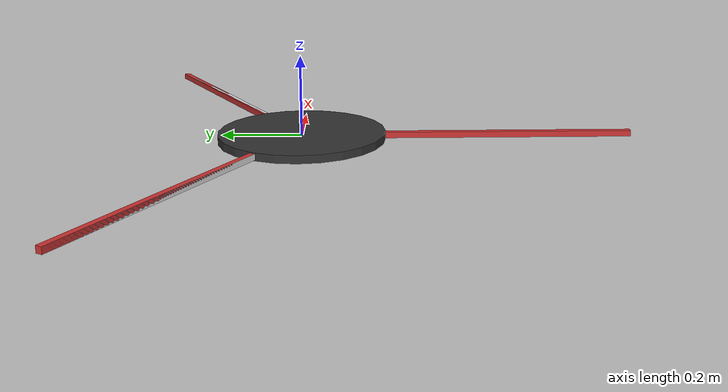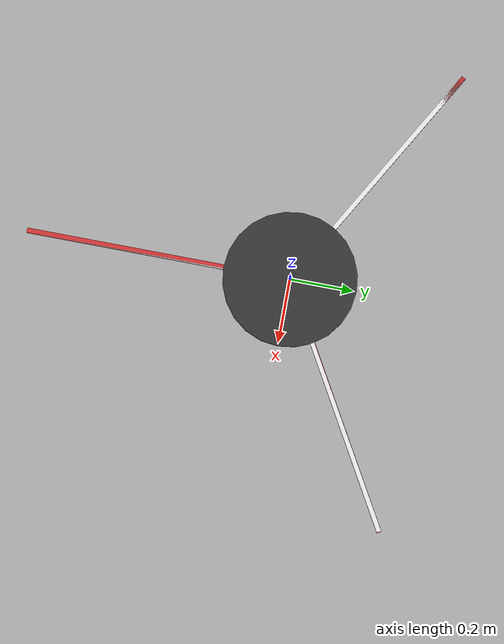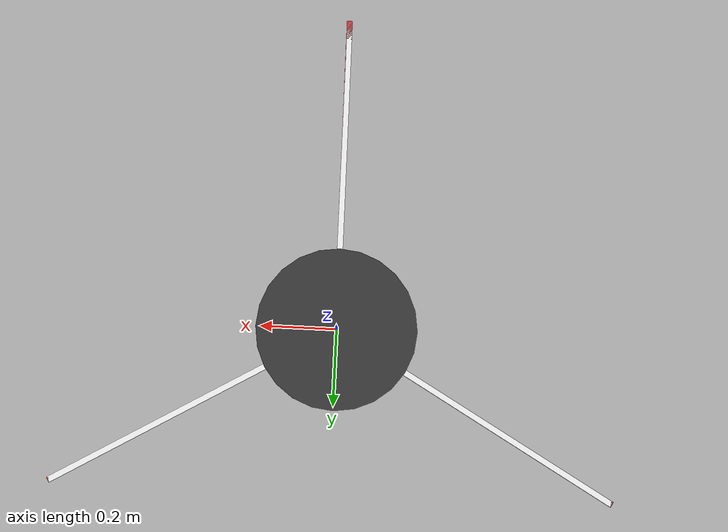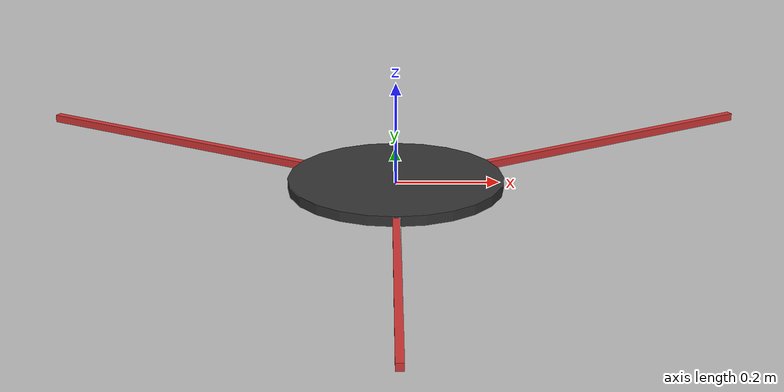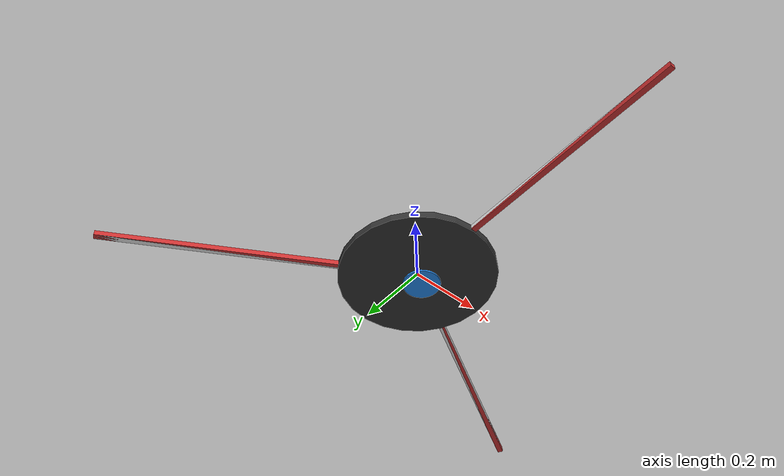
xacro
<?xml version="1.0"?>
<robot xmlns:xacro="http://www.ros.org/wiki/xacro" name="delta_robot">

  <!-- Robot Parameters -->
  <xacro:property name="base_radius" value="0.210" />
  <xacro:property name="base_height" value="0.020" />
  <xacro:property name="upper_arm_length" value="0.620" />
  <xacro:property name="lower_arm_length" value="0.880" />
  <xacro:property name="arm_thickness" value="0.015" />
  <xacro:property name="end_effector_radius" value="0.050" />
  <xacro:property name="end_effector_height" value="0.010" />
  <xacro:property name="triangle_side_length" value="0.120" />  <!-- Triangular end effector size -->
  <xacro:property name="triangle_height" value="0.010" />

  <!-- Calculated connection points for triangular end effector -->
  <xacro:property name="triangle_offset" value="0.035" />  <!-- Distance from triangle center to vertex -->

  <!-- Materials -->
  <material name="gris">
    <color rgba="0.55 0.55 0.55 1.0"/>
  </material>

  <material name="blanco">
    <color rgba="0.9 0.9 0.9 1.0"/>
  </material>

  <material name="colorte">
    <color rgba="0.15 0.55 0.95 1.0"/>
  </material>

  <material name="negro">
    <color rgba="0.2 0.2 0.2 1.0"/>
  </material>

  <material name="verde">
    <color rgba="0.2 0.8 0.2 1.0"/>
  </material>

  <material name="rojo">
    <color rgba="0.8 0.2 0.2 1.0"/>
  </material>

  <!-- BASE SUPERIOR -->
  <link name="base_link">
    <visual>
      <origin xyz="0 0 0" rpy="0 0 0"/>
      <geometry>
        <cylinder length="${base_height}" radius="${base_radius}"/>
      </geometry>
      <material name="negro"/>
    </visual>
    <collision>
      <origin xyz="0 0 0" rpy="0 0 0"/>
      <geometry>
        <cylinder length="${base_height}" radius="${base_radius}"/>
      </geometry>
    </collision>
    <inertial>
      <mass value="5.0"/>
      <origin xyz="0 0 0" rpy="0 0 0"/>
      <inertia ixx="0.2" ixy="0" ixz="0" iyy="0.2" iyz="0" izz="0.35"/>
    </inertial>
  </link>

  <!-- BRAZOS SUPERIORES (Upper Arms) -->

  <!-- BRAZO_1 (Arm 1) -->
  <link name="brazo1">
    <visual>
      <origin xyz="${upper_arm_length/2} 0 0" rpy="0 0 0"/>
      <geometry>
        <box size="${upper_arm_length} ${arm_thickness} ${arm_thickness}"/>
      </geometry>
      <material name="rojo"/>
    </visual>
    <collision>
      <origin xyz="${upper_arm_length/2} 0 0" rpy="0 0 0"/>
      <geometry>
        <box size="${upper_arm_length} ${arm_thickness} ${arm_thickness}"/>
      </geometry>
    </collision>
    <inertial>
      <mass value="0.8"/>
      <origin xyz="${upper_arm_length/2} 0 0" rpy="0 0 0"/>
      <inertia ixx="0.001" ixy="0" ixz="0" iyy="0.025" iyz="0" izz="0.025"/>
    </inertial>
  </link>

  <joint name="base_brazo1" type="revolute">
    <axis xyz="0 1 0"/>
    <limit effort="200.0" lower="-1.047" upper="1.047" velocity="2.0"/>
    <parent link="base_link"/>
    <child link="brazo1"/>
    <origin xyz="-0.181865335 0.105 0" rpy="0 0 2.61799"/>
  </joint>

  <!-- BRAZO_2 (Arm 2) -->
  <link name="brazo2">
    <visual>
      <origin xyz="${upper_arm_length/2} 0 0" rpy="0 0 0"/>
      <geometry>
        <box size="${upper_arm_length} ${arm_thickness} ${arm_thickness}"/>
      </geometry>
      <material name="rojo"/>
    </visual>
    <collision>
      <origin xyz="${upper_arm_length/2} 0 0" rpy="0 0 0"/>
      <geometry>
        <box size="${upper_arm_length} ${arm_thickness} ${arm_thickness}"/>
      </geometry>
    </collision>
    <inertial>
      <mass value="0.8"/>
      <origin xyz="${upper_arm_length/2} 0 0" rpy="0 0 0"/>
      <inertia ixx="0.001" ixy="0" ixz="0" iyy="0.025" iyz="0" izz="0.025"/>
    </inertial>
  </link>

  <joint name="base_brazo2" type="revolute">
    <axis xyz="0 1 0"/>
    <limit effort="200.0" lower="-1.047" upper="1.047" velocity="2.0"/>
    <parent link="base_link"/>
    <child link="brazo2"/>
    <origin xyz="0 -0.210 0" rpy="0 0 -1.57075"/>
  </joint>

  <!-- BRAZO_3 (Arm 3) -->
  <link name="brazo3">
    <visual>
      <origin xyz="${upper_arm_length/2} 0 0" rpy="0 0 0"/>
      <geometry>
        <box size="${upper_arm_length} ${arm_thickness} ${arm_thickness}"/>
      </geometry>
      <material name="rojo"/>
    </visual>
    <collision>
      <origin xyz="${upper_arm_length/2} 0 0" rpy="0 0 0"/>
      <geometry>
        <box size="${upper_arm_length} ${arm_thickness} ${arm_thickness}"/>
      </geometry>
    </collision>
    <inertial>
      <mass value="0.8"/>
      <origin xyz="${upper_arm_length/2} 0 0" rpy="0 0 0"/>
      <inertia ixx="0.001" ixy="0" ixz="0" iyy="0.025" iyz="0" izz="0.025"/>
    </inertial>
  </link>

  <joint name="base_brazo3" type="revolute">
    <axis xyz="0 1 0"/>
    <limit effort="200.0" lower="-1.047" upper="1.047" velocity="2.0"/>
    <parent link="base_link"/>
    <child link="brazo3"/>
    <origin xyz="0.181865335 0.105 0" rpy="0 0 0.523599"/>
  </joint>

  <!-- BRAZOS INFERIORES (Lower Arms) -->

  <!-- Ante_BRAZO_1 (Lower Arm 1) -->
  <link name="barra1_a">
    <inertial>
      <mass value="0.05"/>
      <origin xyz="0 0 0" rpy="0 0 0"/>
      <inertia ixx="0.0005" ixy="0" ixz="0" iyy="0.0005" iyz="0" izz="0.0005"/>
    </inertial>
  </link>

  <joint name="codo1_a" type="revolute">
    <axis xyz="0 -1 0"/>
    <limit effort="100.0" lower="-3.14" upper="3.14" velocity="0.5"/>
    <parent link="brazo1"/>
    <child link="barra1_a"/>
    <origin xyz="${upper_arm_length} 0 0" rpy="0 0 0"/>
  </joint>

  <link name="barra1_b">
    <visual>
      <origin xyz="-${lower_arm_length/2} 0 0" rpy="0 0 0"/>
      <geometry>
        <box size="${lower_arm_length} ${arm_thickness} ${arm_thickness}"/>
      </geometry>
      <material name="blanco"/>
    </visual>
    <collision>
      <origin xyz="-${lower_arm_length/2} 0 0" rpy="0 0 0"/>
      <geometry>
        <box size="${lower_arm_length} ${arm_thickness} ${arm_thickness}"/>
      </geometry>
    </collision>
    <inertial>
      <mass value="0.4"/>
      <origin xyz="-${lower_arm_length/2} 0 0" rpy="0 0 0"/>
      <inertia ixx="0.001" ixy="0" ixz="0" iyy="0.026" iyz="0" izz="0.026"/>
    </inertial>
  </link>

  <joint name="codo1_b" type="revolute">
    <axis xyz="0 0 1"/>
    <limit effort="100.0" lower="-3.14" upper="3.14" velocity="0.5"/>
    <parent link="barra1_a"/>
    <child link="barra1_b"/>
    <origin xyz="0 0 0" rpy="0 0 0"/>
  </joint>

  <!-- Ante_BRAZO_2 (Lower Arm 2) -->
  <link name="barra2_a">
    <inertial>
      <mass value="0.05"/>
      <origin xyz="0 0 0" rpy="0 0 0"/>
      <inertia ixx="0.0005" ixy="0" ixz="0" iyy="0.0005" iyz="0" izz="0.0005"/>
    </inertial>
  </link>

  <joint name="codo2_a" type="revolute">
    <axis xyz="0 -1 0"/>
    <limit effort="100.0" lower="-3.14" upper="3.14" velocity="0.5"/>
    <parent link="brazo2"/>
    <child link="barra2_a"/>
    <origin xyz="${upper_arm_length} 0 0" rpy="0 0 0"/>
  </joint>

  <link name="barra2_b">
    <visual>
      <origin xyz="-${lower_arm_length/2} 0 0" rpy="0 0 0"/>
      <geometry>
        <box size="${lower_arm_length} ${arm_thickness} ${arm_thickness}"/>
      </geometry>
      <material name="blanco"/>
    </visual>
    <collision>
      <origin xyz="-${lower_arm_length/2} 0 0" rpy="0 0 0"/>
      <geometry>
        <box size="${lower_arm_length} ${arm_thickness} ${arm_thickness}"/>
      </geometry>
    </collision>
    <inertial>
      <mass value="0.4"/>
      <origin xyz="-${lower_arm_length/2} 0 0" rpy="0 0 0"/>
      <inertia ixx="0.008" ixy="0" ixz="0" iyy="0.026" iyz="0" izz="0.026"/>
    </inertial>
  </link>

  <joint name="codo2_b" type="revolute">
    <axis xyz="0 0 1"/>
    <limit effort="100.0" lower="-3.14" upper="3.14" velocity="0.5"/>
    <parent link="barra2_a"/>
    <child link="barra2_b"/>
    <origin xyz="0 0 0" rpy="0 0 0"/>
  </joint>

  <!-- Ante_BRAZO_3 (Lower Arm 3) -->
  <link name="barra3_a">
    <inertial>
      <mass value="0.05"/>
      <origin xyz="0 0 0" rpy="0 0 0"/>
      <inertia ixx="0.0005" ixy="0" ixz="0" iyy="0.0005" iyz="0" izz="0.0005"/>
    </inertial>
  </link>

  <joint name="codo3_a" type="revolute">
    <axis xyz="0 -1 0"/>
    <limit effort="100.0" lower="-3.14" upper="3.14" velocity="0.5"/>
    <parent link="brazo3"/>
    <child link="barra3_a"/>
    <origin xyz="${upper_arm_length} 0 0" rpy="0 0 0"/>
  </joint>

  <link name="barra3_b">
    <visual>
      <origin xyz="-${lower_arm_length/2} 0 0" rpy="0 0 0"/>
      <geometry>
        <box size="${lower_arm_length} ${arm_thickness} ${arm_thickness}"/>
      </geometry>
      <material name="blanco"/>
    </visual>
    <collision>
      <origin xyz="-${lower_arm_length/2} 0 0" rpy="0 0 0"/>
      <geometry>
        <box size="${lower_arm_length} ${arm_thickness} ${arm_thickness}"/>
      </geometry>
    </collision>
    <inertial>
      <mass value="0.4"/>
      <origin xyz="-${lower_arm_length/2} 0 0" rpy="0 0 0"/>
      <inertia ixx="0.008" ixy="0" ixz="0" iyy="0.026" iyz="0" izz="0.026"/>
    </inertial>
  </link>

  <joint name="codo3_b" type="revolute">
    <axis xyz="0 0 1"/>
    <limit effort="100.0" lower="-3.14" upper="3.14" velocity="0.5"/>
    <parent link="barra3_a"/>
    <child link="barra3_b"/>
    <origin xyz="0 0 0" rpy="0 0 0"/>
  </joint>

  <!-- TRIANGULAR END EFFECTOR -->
  <!-- Main triangular platform that connects all three forearms -->
  <link name="end_effector_triangle">
    <visual>
      <origin xyz="0 0 0" rpy="0 0 0"/>
      <geometry>
        <cylinder length="${triangle_height}" radius="${triangle_side_length/2}"/>
      </geometry>
      <material name="verde"/>
    </visual>
    <collision>
      <origin xyz="0 0 0" rpy="0 0 0"/>
      <geometry>
        <cylinder length="${triangle_height}" radius="${triangle_side_length/2}"/>
      </geometry>
    </collision>
    <inertial>
      <mass value="0.3"/>
      <origin xyz="0 0 0" rpy="0 0 0"/>
      <inertia ixx="0.005" ixy="0" ixz="0" iyy="0.005" iyz="0" izz="0.008"/>
    </inertial>
  </link>

  <!-- Primary connection: Connect triangle to forearm 1 (kinematic tree) -->
  <link name="forearm1_ee_connection">
    <inertial>
      <mass value="0.01"/>
      <origin xyz="0 0 0" rpy="0 0 0"/>
      <inertia ixx="0.0001" ixy="0" ixz="0" iyy="0.0001" iyz="0" izz="0.0001"/>
    </inertial>
  </link>

  <joint name="forearm1_ee_x" type="revolute">
    <axis xyz="1 0 0"/>
    <limit effort="0" lower="-3.14" upper="3.14" velocity="10.0"/>
    <parent link="barra1_b"/>
    <child link="forearm1_ee_connection"/>
    <origin xyz="-${lower_arm_length} 0 0" rpy="0 0 0"/>
  </joint>

  <joint name="forearm1_ee_y" type="revolute">
    <axis xyz="0 1 0"/>
    <limit effort="0" lower="-3.14" upper="3.14" velocity="10.0"/>
    <parent link="forearm1_ee_connection"/>
    <child link="end_effector_triangle"/>
    <origin xyz="${triangle_offset} -${triangle_offset*0.577} 0" rpy="0 0 0"/>
  </joint>

  <!-- Visual connection points for forearms 2 and 3 (no kinematic loops) -->
  <!-- Connection point 2 visualization -->
  <link name="triangle_connection2_visual">
    <visual>
      <origin xyz="0 0 0" rpy="0 0 0"/>
      <geometry>
        <sphere radius="0.008"/>
      </geometry>
      <material name="negro"/>
    </visual>
    <inertial>
      <mass value="0.01"/>
      <origin xyz="0 0 0" rpy="0 0 0"/>
      <inertia ixx="0.0001" ixy="0" ixz="0" iyy="0.0001" iyz="0" izz="0.0001"/>
    </inertial>
  </link>

  <joint name="triangle_conn2_visual" type="fixed">
    <parent link="end_effector_triangle"/>
    <child link="triangle_connection2_visual"/>
    <origin xyz="0 ${triangle_offset*1.155} 0" rpy="0 0 0"/>
  </joint>

  <!-- Connection point 3 visualization -->
  <link name="triangle_connection3_visual">
    <visual>
      <origin xyz="0 0 0" rpy="0 0 0"/>
      <geometry>
        <sphere radius="0.008"/>
      </geometry>
      <material name="negro"/>
    </visual>
    <inertial>
      <mass value="0.01"/>
      <origin xyz="0 0 0" rpy="0 0 0"/>
      <inertia ixx="0.0001" ixy="0" ixz="0" iyy="0.0001" iyz="0" izz="0.0001"/>
    </inertial>
  </link>

  <joint name="triangle_conn3_visual" type="fixed">
    <parent link="end_effector_triangle"/>
    <child link="triangle_connection3_visual"/>
    <origin xyz="-${triangle_offset} -${triangle_offset*0.577} 0" rpy="0 0 0"/>
  </joint>

  <!-- Visual end points of forearms 2 and 3 -->
  <link name="forearm2_end_visual">
    <visual>
      <origin xyz="0 0 0" rpy="0 0 0"/>
      <geometry>
        <sphere radius="0.005"/>
      </geometry>
      <material name="rojo"/>
    </visual>
    <inertial>
      <mass value="0.001"/>
      <origin xyz="0 0 0" rpy="0 0 0"/>
      <inertia ixx="0.00001" ixy="0" ixz="0" iyy="0.00001" iyz="0" izz="0.00001"/>
    </inertial>
  </link>

  <joint name="forearm2_end_joint" type="fixed">
    <parent link="barra2_b"/>
    <child link="forearm2_end_visual"/>
    <origin xyz="-${lower_arm_length} 0 0" rpy="0 0 0"/>
  </joint>

  <link name="forearm3_end_visual">
    <visual>
      <origin xyz="0 0 0" rpy="0 0 0"/>
      <geometry>
        <sphere radius="0.005"/>
      </geometry>
      <material name="rojo"/>
    </visual>
    <inertial>
      <mass value="0.001"/>
      <origin xyz="0 0 0" rpy="0 0 0"/>
      <inertia ixx="0.00001" ixy="0" ixz="0" iyy="0.00001" iyz="0" izz="0.00001"/>
    </inertial>
  </link>

  <joint name="forearm3_end_joint" type="fixed">
    <parent link="barra3_b"/>
    <child link="forearm3_end_visual"/>
    <origin xyz="-${lower_arm_length} 0 0" rpy="0 0 0"/>
  </joint>

  <!-- ACTUADOR (Tool mounting point on triangular end effector) -->
  <link name="actuador">
    <visual>
      <origin xyz="0 0 0" rpy="0 0 0"/>
      <geometry>
        <cylinder length="${end_effector_height}" radius="${end_effector_radius}"/>
      </geometry>
      <material name="colorte"/>
    </visual>
    <collision>
      <origin xyz="0 0 0" rpy="0 0 0"/>
      <geometry>
        <cylinder length="${end_effector_height}" radius="${end_effector_radius}"/>
      </geometry>
    </collision>
    <inertial>
      <mass value="0.1"/>
      <origin xyz="0 0 0" rpy="0 0 0"/>
      <inertia ixx="0.001" ixy="0" ixz="0" iyy="0.001" iyz="0" izz="0.001"/>
    </inertial>
  </link>

  <!-- Mount actuator to center of triangular end effector -->
  <joint name="triangle_to_actuator" type="fixed">
    <parent link="end_effector_triangle"/>
    <child link="actuador"/>
    <origin xyz="0 0 -${triangle_height/2 + end_effector_height/2}" rpy="0 0 0"/>
  </joint>

</robot>
